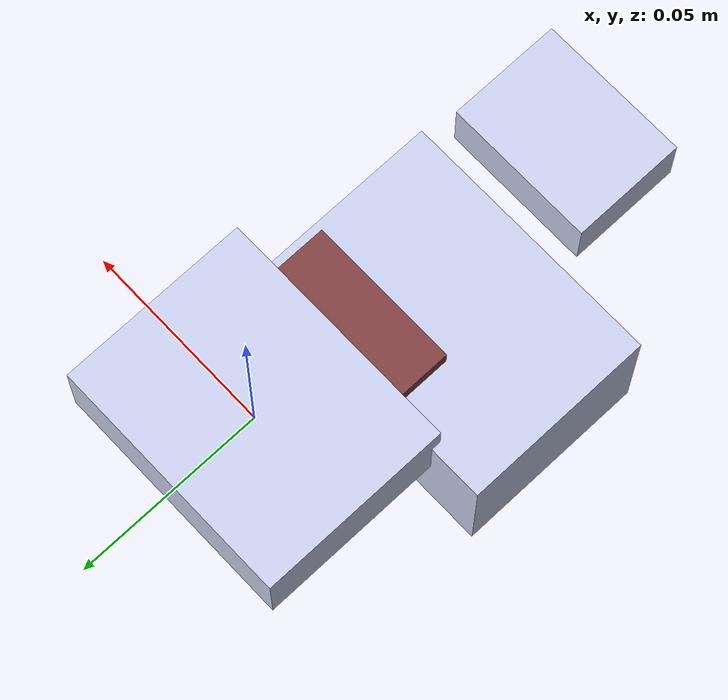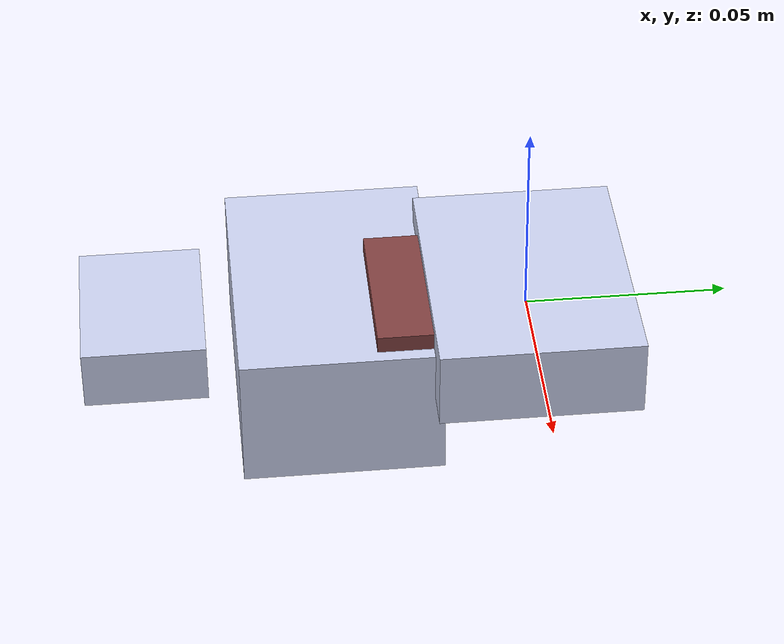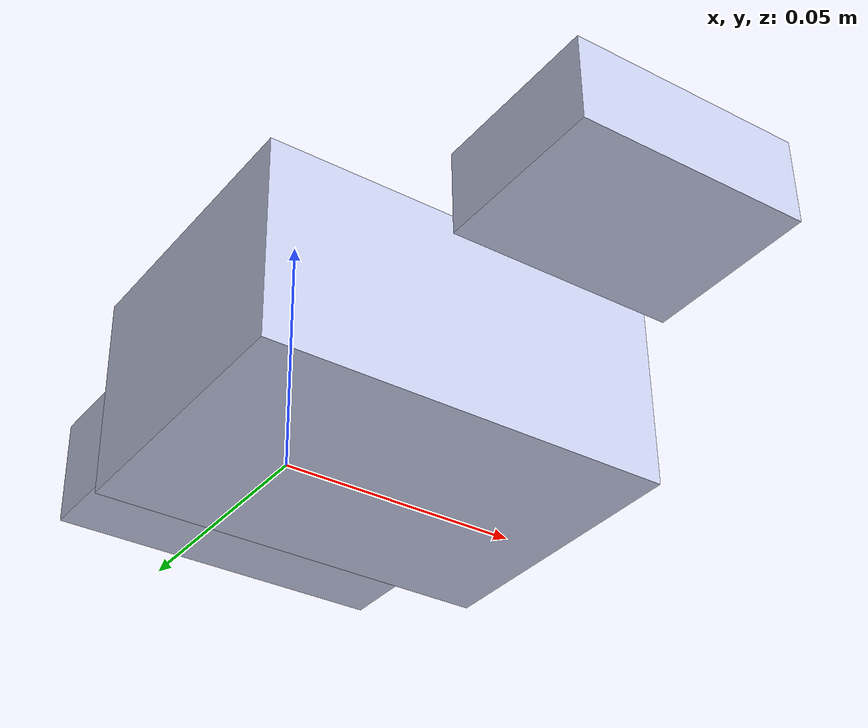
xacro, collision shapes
<?xml version="1.0" encoding="utf-8"?>
<!-- Simplified collision geometry version for faster computation -->
<robot xmlns:xacro="http://ros.org/wiki/xacro" name="gemini_335L_336L">
  <xacro:property name="mesh_path" value="package://seer_description/meshes/gemini335L_336L/" />
  <link
    name="camera_link">
    <inertial>
      <origin
        xyz="0.00287577972418718 0.000617475958990782 0.0141094270811986"
        rpy="0 0 0" />
      <mass
        value="0.0330710167577971" />
      <inertia
        ixx="4.44764516625696E-05"
        ixy="5.53948591538607E-08"
        ixz="-2.79060738018455E-08"
        iyy="3.07720636867613E-06"
        iyz="1.65209163393457E-07"
        izz="4.23385079682874E-05" />
    </inertial>
    <visual>
      <origin
        xyz="-0.011715 -0.0475 -0.014311"
        rpy="0 0 0" />
      <geometry>
        <mesh
          filename="${mesh_path}base_link.STL" />
      </geometry>
      <material name="gemini_color">
        <color
          rgba="0.792156862745098 0.819607843137255 0.933333333333333 1" />
      </material>
    </visual>
    <collision>
      <origin
        xyz="-0.011715 -0.0475 -0.014311"
        rpy="0 0 0" />
      <geometry>
        <box size="0.07 0.05 0.035" />
      </geometry>
    </collision>
  </link>
  <link
    name="camera_color_screw_frame">
    <inertial>
      <origin
        xyz="-0.000565327084882765 -0.000754794567604389 0.0132965378040367"
        rpy="0 0 0" />
      <mass
        value="0.00682237197281727" />
      <inertia
        ixx="6.29665283187838E-06"
        ixy="-5.56290557545124E-09"
        ixz="-4.00728156039594E-09"
        iyy="3.51296306719609E-07"
        iyz="1.01025992411894E-07"
        izz="5.98951376451163E-06" />
    </inertial>
    <visual>
      <origin
        xyz="0 0 0"
        rpy="0 0 0" />
      <geometry>
        <mesh
          filename="${mesh_path}camera_color_screw_frame.STL" />
      </geometry>
      <material name="gemini_color">
        <color
          rgba="0.792156862745098 0.819607843137255 0.933333333333333 1" />
      </material>
    </visual>
    <collision>
      <origin
        xyz="0 0 0"
        rpy="0 0 0" />
      <geometry>
        <box size="0.04 0.015 0.005" />
      </geometry>
    </collision>
  </link>
  <joint
    name="camera_color_screw_joint"
    type="fixed">
    <origin
      xyz="-0.011715 -0.0475 -0.014311"
      rpy="0 0 0" />
    <parent
      link="camera_link" />
    <child
      link="camera_color_screw_frame" />
    <axis
      xyz="0 0 0" />
  </joint>
  <link
    name="camera_IMU_frame">
    <inertial>
      <origin
        xyz="-0.000484999999999999 0 0"
        rpy="0 0 0" />
      <mass
        value="1.1218632E-05" />
      <inertia
        ixx="2.18587565431999E-11"
        ixy="0"
        ixz="-3.24383195391647E-28"
        iyy="1.0215031879E-11"
        iyz="-3.36058814408671E-29"
        izz="1.34029931389999E-11" />
    </inertial>
    <visual>
      <origin
        xyz="0 0 0"
        rpy="0 0 0" />
      <geometry>
        <mesh
          filename="${mesh_path}camera_IMU_frame.STL" />
      </geometry>
      <material name="gemini_color">
        <color
          rgba="0.792156862745098 0.819607843137255 0.933333333333333 1" />
      </material>
    </visual>
    <collision>
      <origin
        xyz="0 0 0"
        rpy="0 0 0" />
      <geometry>
        <box size="0.01 0.01 0.005" />
      </geometry>
    </collision>
  </link>
  <joint
    name="camera_IMU_joint"
    type="fixed">
    <origin
      xyz="-0.01425 -0.007866 -0.001068"
      rpy="0 0 0" />
    <parent
      link="camera_depth_frame" />
    <child
      link="camera_IMU_frame" />
    <axis
      xyz="0 0 0" />
  </joint>
  <link
    name="camera_depth_frame">
    <inertial>
      <origin
        xyz="-0.00158020638644197 -1.72113892998871E-08 -1.52265896501485E-07"
        rpy="0 0 0" />
      <mass
        value="0.00045316775745635" />
      <inertia
        ixx="4.34107394943177E-09"
        ixy="-3.70457372455813E-13"
        ixz="-1.46474854133768E-13"
        iyy="4.84011101176503E-09"
        iyz="2.21976196909378E-14"
        izz="4.84043649602512E-09" />
    </inertial>
    <visual>
      <origin
        xyz="0 0 0"
        rpy="0 0 0" />
      <geometry>
        <mesh
          filename="${mesh_path}camera_depth_frame.STL" />
      </geometry>
      <material name="gemini_color">
        <color
          rgba="0.792156862745098 0.819607843137255 0.933333333333333 1" />
      </material>
    </visual>
    <collision>
      <origin
        xyz="0 0 0"
        rpy="0 0 0" />
      <geometry>
        <box size="0.065 0.05 0.02" />
      </geometry>
    </collision>
  </link>
  <joint
    name="camera_depth_joint"
    type="fixed">
    <origin
      xyz="0 0 0"
      rpy="0 0 0" />
    <parent
      link="camera_link" />
    <child
      link="camera_depth_frame" />
    <axis
      xyz="0 0 0" />
  </joint>
  <link
    name="camera_left_ir_frame">
    <inertial>
      <origin
        xyz="-0.00158020638644197 -1.72113892998871E-08 -1.52265896501463E-07"
        rpy="0 0 0" />
      <mass
        value="0.00045316775745635" />
      <inertia
        ixx="4.34107394943177E-09"
        ixy="-3.70457372455807E-13"
        ixz="-1.464748541338E-13"
        iyy="4.84011101176503E-09"
        iyz="2.21976196909559E-14"
        izz="4.84043649602512E-09" />
    </inertial>
    <visual>
      <origin
        xyz="0 0 0"
        rpy="0 0 0" />
      <geometry>
        <mesh
          filename="${mesh_path}camera_infra1_frame.STL" />
      </geometry>
      <material name="gemini_color">
        <color
          rgba="0.792156862745098 0.819607843137255 0.933333333333333 1" />
      </material>
    </visual>
    <collision>
      <origin
        xyz="0 0 0"
        rpy="0 0 0" />
      <geometry>
        <box size="0.04 0.03 0.015" />
      </geometry>
    </collision>
  </link>
  <joint
    name="camera_left_ir_joint"
    type="fixed">
    <origin
      xyz="0 0 0"
      rpy="0 0 0" />
    <parent
      link="camera_depth_frame" />
    <child
      link="camera_left_ir_frame" />
    <axis
      xyz="0 0 0" />
  </joint>
  <link
    name="camera_left_ir_optical_frame">
    <inertial>
      <origin
        xyz="1.72113892998871E-08 1.52265896501462E-07 -0.00158020638644197"
        rpy="0 0 0" />
      <mass
        value="0.00045316775745635" />
      <inertia
        ixx="4.84011101176503E-09"
        ixy="2.2197619690945E-14"
        ixz="3.70457372455806E-13"
        iyy="4.84043649602512E-09"
        iyz="1.46474854133777E-13"
        izz="4.34107394943177E-09" />
    </inertial>
    <visual>
      <origin
        xyz="0 0 0"
        rpy="0 0 0" />
      <geometry>
        <mesh
          filename="${mesh_path}camera_infra1_optical_frame.STL" />
      </geometry>
      <material name="gemini_color">
        <color
          rgba="0.792156862745098 0.819607843137255 0.933333333333333 1" />
      </material>
    </visual>
    <collision>
      <origin
        xyz="0 0 0"
        rpy="0 0 0" />
      <geometry>
        <box size="0.008 0.008 0.008" />
      </geometry>
    </collision>
  </link>
  <joint
    name="camera_left_ir_optical_joint"
    type="fixed">
    <origin
      xyz="0 0 0"
      rpy="-1.5708 0 -1.5708" />
    <parent
      link="camera_left_ir_frame" />
    <child
      link="camera_left_ir_optical_frame" />
    <axis
      xyz="0 0 0" />
  </joint>
  <link
    name="camera_right_ir_frame">
    <inertial>
      <origin
        xyz="-0.00158020638644197 -1.72113892998871E-08 -1.5226589649853E-07"
        rpy="0 0 0" />
      <mass
        value="0.000453167757456349" />
      <inertia
        ixx="4.34107394943177E-09"
        ixy="-3.70457372454514E-13"
        ixz="-1.46474854139355E-13"
        iyy="4.84011101176503E-09"
        iyz="2.21976196892825E-14"
        izz="4.84043649602512E-09" />
    </inertial>
    <visual>
      <origin
        xyz="0 0 0"
        rpy="0 0 0" />
      <geometry>
        <mesh
          filename="${mesh_path}camera_infra2_frame.STL" />
      </geometry>
      <material name="gemini_color">
        <color
          rgba="0.792156862745098 0.819607843137255 0.933333333333333 1" />
      </material>
    </visual>
    <collision>
      <origin
        xyz="0 0 0"
        rpy="0 0 0" />
      <geometry>
        <box size="0.04 0.03 0.015" />
      </geometry>
    </collision>
  </link>
  <joint
    name="camera_right_ir_joint"
    type="fixed">
    <origin
      xyz="0 -0.095 0"
      rpy="0 0 0" />
    <parent
      link="camera_depth_frame" />
    <child
      link="camera_right_ir_frame" />
    <axis
      xyz="0 0 0" />
  </joint>
  <link
    name="camera_right_ir_optical_frame">
    <inertial>
      <origin
        xyz="1.72113892998871E-08 1.52265896498545E-07 -0.00158020638644197"
        rpy="0 0 0" />
      <mass
        value="0.000453167757456349" />
      <inertia
        ixx="4.84011101176503E-09"
        ixy="2.21976196892926E-14"
        ixz="3.7045737245453E-13"
        iyy="4.84043649602512E-09"
        iyz="1.46474854139357E-13"
        izz="4.34107394943177E-09" />
    </inertial>
    <visual>
      <origin
        xyz="0 0 0"
        rpy="0 0 0" />
      <geometry>
        <mesh
          filename="${mesh_path}camera_infra2_optical_frame.STL" />
      </geometry>
      <material name="gemini_color">
        <color
          rgba="0.792156862745098 0.819607843137255 0.933333333333333 1" />
      </material>
    </visual>
    <collision>
      <origin
        xyz="0 0 0"
        rpy="0 0 0" />
      <geometry>
        <box size="0.008 0.008 0.008" />
      </geometry>
    </collision>
  </link>
  <joint
    name="camera_right_ir_optical_joint"
    type="fixed">
    <origin
      xyz="0 0 0"
      rpy="-1.5708 0 -1.5708" />
    <parent
      link="camera_right_ir_frame" />
    <child
      link="camera_right_ir_optical_frame" />
    <axis
      xyz="0 0 0" />
  </joint>
  <link
    name="camera_color_frame">
    <inertial>
      <origin
        xyz="-0.00158020000774522 -2.03380748700632E-08 -1.59580992343651E-07"
        rpy="0 0 0" />
      <mass
        value="0.000453166139060244" />
      <inertia
        ixx="4.34106103694197E-09"
        ixy="-3.74713926702605E-13"
        ixz="-1.54192867143563E-13"
        iyy="4.84009702890227E-09"
        iyz="1.94453950166097E-14"
        izz="4.8404288092859E-09" />
    </inertial>
    <visual>
      <origin
        xyz="0 0 0"
        rpy="0 0 0" />
      <geometry>
        <mesh
          filename="${mesh_path}camera_color_frame.STL" />
      </geometry>
      <material name="gemini_color">
        <color
          rgba="0.501960784313725 0.250980392156863 0.250980392156863 1" />
      </material>
    </visual>
    <collision>
      <origin
        xyz="0 0 0"
        rpy="0 0 0" />
      <geometry>
        <box size="0.04 0.03 0.015" />
      </geometry>
    </collision>
  </link>
  <joint
    name="camera_color_joint"
    type="fixed">
    <origin
      xyz="0 -0.02375 0"
      rpy="0.0010157 0 0" />
    <parent
      link="camera_depth_frame" />
    <child
      link="camera_color_frame" />
    <axis
      xyz="0 0 0" />
  </joint>
  <link
    name="camera_color_optical_frame">
    <inertial>
      <origin
        xyz="2.03380748735327E-08 1.59580992343634E-07 -0.00158020000774522"
        rpy="0 0 0" />
      <mass
        value="0.000453166139060244" />
      <inertia
        ixx="4.84009702890227E-09"
        ixy="1.94453950166198E-14"
        ixz="3.74713926702576E-13"
        iyy="4.8404288092859E-09"
        iyz="1.5419286714356E-13"
        izz="4.34106103694197E-09" />
    </inertial>
    <visual>
      <origin
        xyz="0 0 0"
        rpy="0 0 0" />
      <geometry>
        <mesh
          filename="${mesh_path}camera_color_optical_frame.STL" />
      </geometry>
      <material name="gemini_color">
        <color
          rgba="0.501960784313725 0.250980392156863 0.250980392156863 1" />
      </material>
    </visual>
    <collision>
      <origin
        xyz="0 0 0"
        rpy="0 0 0" />
      <geometry>
        <box size="0.008 0.008 0.008" />
      </geometry>
    </collision>
  </link>
  <joint
    name="camera_color_optical_joint"
    type="fixed">
    <origin
      xyz="0 0 0"
      rpy="-1.5708 0 -1.5708" />
    <parent
      link="camera_color_frame" />
    <child
      link="camera_color_optical_frame" />
    <axis
      xyz="0 0 0" />
  </joint>

  <!-- gazebo simulation -->
  <gazebo reference="camera_IMU_frame">
    <sensor name="gemini_imu" type="imu">
      <always_on>1</always_on>
      <update_rate>200</update_rate>
      <visualize>true</visualize>
      <topic>/camera/imu</topic>
      <gz_frame_id>camera_IMU_frame</gz_frame_id>
      <imu>
        <angular_velocity>
          <x>
            <noise type="gaussian">
              <mean>0.0</mean>
              <stddev>0.0002</stddev>
            </noise>
          </x>
          <y>
            <noise type="gaussian">
              <mean>0.0</mean>
              <stddev>0.0002</stddev>
            </noise>
          </y>
          <z>
            <noise type="gaussian">
              <mean>0.0</mean>
              <stddev>0.0002</stddev>
            </noise>
          </z>
        </angular_velocity>
        <linear_acceleration>
          <x>
            <noise type="gaussian">
              <mean>0.0</mean>
              <stddev>0.017</stddev>
            </noise>
          </x>
          <y>
            <noise type="gaussian">
              <mean>0.0</mean>
              <stddev>0.017</stddev>
            </noise>
          </y>
          <z>
            <noise type="gaussian">
              <mean>0.0</mean>
              <stddev>0.017</stddev>
            </noise>
          </z>
        </linear_acceleration>
      </imu>
    </sensor>
  </gazebo>

  <gazebo reference="camera_left_ir_frame">
    <sensor name="gemini_left_ir" type="camera">
      <always_on>1</always_on>
      <update_rate>30</update_rate>
      <visualize>true</visualize>
      <topic>/camera/left/image_raw</topic>
      <gz_frame_id>camera_left_ir_optical_frame</gz_frame_id>
      <camera>
        <horizontal_fov>1.5708</horizontal_fov>
        <image>
          <width>1280</width>
          <height>800</height>
          <format>L8</format>
        </image>
        <clip>
          <near>0.05</near>
          <far>10.0</far>
        </clip>
      </camera>
    </sensor>
  </gazebo>

  <gazebo reference="camera_right_ir_frame">
    <sensor name="gemini_right_ir" type="camera">
      <always_on>1</always_on>
      <update_rate>30</update_rate>
      <visualize>true</visualize>
      <topic>/camera/right/image_raw</topic>
      <gz_frame_id>camera_right_ir_optical_frame</gz_frame_id>
      <camera>
        <horizontal_fov>1.5708</horizontal_fov>
        <image>
          <width>1280</width>
          <height>800</height>
          <format>L8</format>
        </image>
        <clip>
          <near>0.05</near>
          <far>10.0</far>
        </clip>
      </camera>
    </sensor>
  </gazebo>

  <gazebo reference="camera_depth_frame">
    <sensor name="gemini_rgbd" type="rgbd_camera">
      <always_on>1</always_on>
      <update_rate>10</update_rate>
      <visualize>false</visualize>
      <topic>/camera/depth</topic>
      <gz_frame_id>camera_depth_frame</gz_frame_id>
      <camera>
        <horizontal_fov>1.5708</horizontal_fov>
        <image>
          <width>640</width>
          <height>480</height>
        </image>
        <clip>
          <near>0.1</near>
          <far>5.0</far>
        </clip>
      </camera>
    </sensor>
  </gazebo>
</robot>
